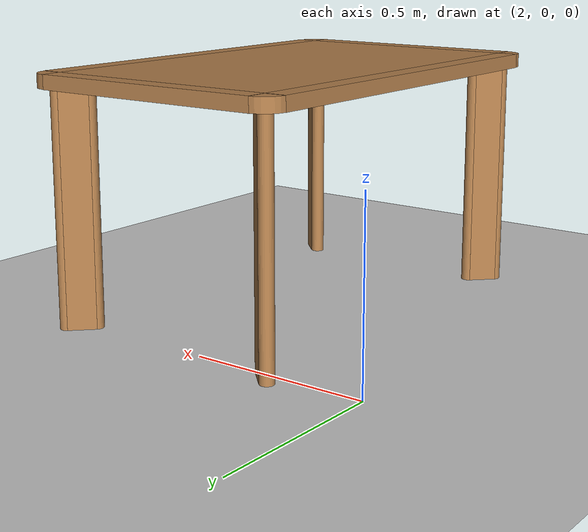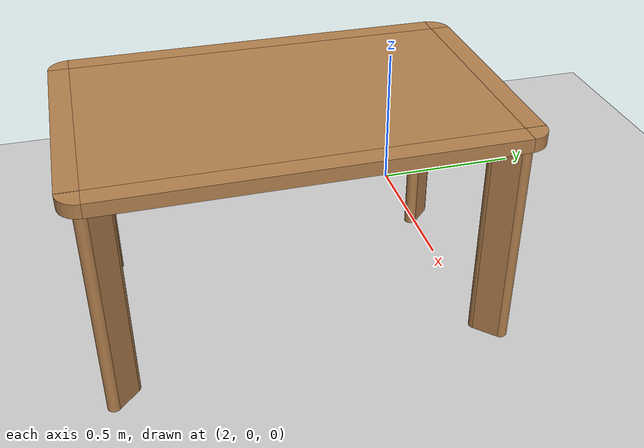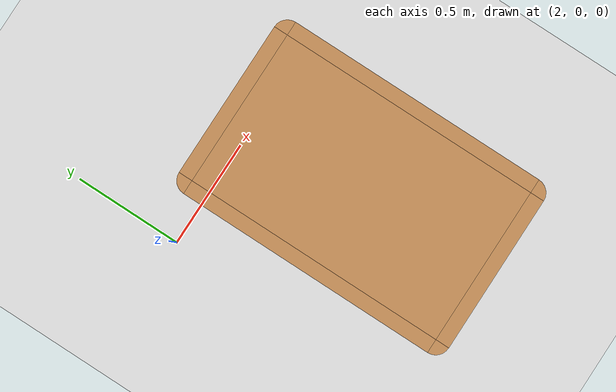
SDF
<sdf version="1.6">
 <world name="default">
  <physics name="default_physics" default="0" type="ode">
   <max_step_size>0.001</max_step_size>
   <real_time_factor>1</real_time_factor>
   <real_time_update_rate>1000</real_time_update_rate>
  </physics>
  <light name="sun" type="directional">
   <pose>0 0 10 0 -0 0</pose>
   <diffuse>0.8 0.8 0.8 1</diffuse>
   <specular>0.2 0.2 0.2 1</specular>
   <attenuation>
    <range>1000</range>
    <constant>0.9</constant>
    <linear>0.01</linear>
    <quadratic>0.001</quadratic>
   </attenuation>
   <direction>-0.5 0.1 -0.9</direction>
  </light>
  <model name="ground_plane">
   <static>1</static>
   <link name="link">
    <collision name="collision">
     <geometry><plane><normal>0 0 1</normal><size>100 100</size></plane></geometry>
     <surface>
      <contact><collide_bitmask>65535</collide_bitmask></contact>
      <friction><ode><mu>100</mu><mu2>50</mu2></ode></friction>
     </surface>
    </collision>
    <visual name="visual">
     <cast_shadows>0</cast_shadows>
     <geometry><plane><normal>0 0 1</normal><size>100 100</size></plane></geometry>
     <material>
      <script><uri>file://media/materials/scripts/gazebo.material</uri><name>Gazebo/Grey</name></script>
     </material>
    </visual>
   </link>
  </model>
  <gravity>0 0 -9.8</gravity>
  <magnetic_field>6e-06 2.3e-05 -4.2e-05</magnetic_field>
  <atmosphere type="adiabatic"/>
  <scene><ambient>0.4 0.4 0.4 1</ambient><background>0.7 0.7 0.7 1</background><shadows>1</shadows></scene>
  <spherical_coordinates>
   <surface_model>EARTH_WGS84</surface_model>
   <latitude_deg>0</latitude_deg>
   <longitude_deg>0</longitude_deg>
   <elevation>0</elevation>
   <heading_deg>0</heading_deg>
  </spherical_coordinates>
  <model name="kitchen_table">
   <link name="link">
    <inertial>
     <mass>10</mass>
     <inertia><ixx>1</ixx><ixy>0</ixy><ixz>0</ixz><iyy>1</iyy><iyz>0</iyz><izz>1</izz></inertia>
    </inertial>
    <visual name="center_board">
     <pose>0 0 0.68 0 -0 0</pose>
     <geometry><box><size>0.68 1.13 0.04</size></box></geometry>
     <material>
      <script><uri>model://base_materials/wood/scripts/wood.material</uri><name>base_materials/wood</name></script>
     </material>
    </visual>
    <collision name="collision_center_board">
     <pose>0 0 0.68 0 -0 0</pose>
     <geometry><box><size>0.68 1.13 0.04</size></box></geometry>
    </collision>
    <visual name="front_board">
     <pose>0.37 0 0.68 0 -0 0</pose>
     <geometry><box><size>0.06 1.13 0.04</size></box></geometry>
     <material>
      <script><uri>model://base_materials/wood/scripts/wood.material</uri><name>base_materials/wood</name></script>
     </material>
    </visual>
    <collision name="collision_front_board">
     <pose>0.37 0 0.68 0 -0 0</pose>
     <geometry><box><size>0.06 1.13 0.04</size></box></geometry>
    </collision>
    <visual name="back_board">
     <pose>-0.37 0 0.68 0 -0 0</pose>
     <geometry><box><size>0.06 1.13 0.04</size></box></geometry>
     <material>
      <script><uri>model://base_materials/wood/scripts/wood.material</uri><name>base_materials/wood</name></script>
     </material>
    </visual>
    <collision name="collision_back_board">
     <pose>-0.37 0 0.68 0 -0 0</pose>
     <geometry><box><size>0.06 1.13 0.04</size></box></geometry>
    </collision>
    <visual name="right_board">
     <pose>0 0.595 0.68 0 -0 0</pose>
     <geometry><box><size>0.68 0.06 0.04</size></box></geometry>
     <material>
      <script><uri>model://base_materials/wood/scripts/wood.material</uri><name>base_materials/wood</name></script>
     </material>
    </visual>
    <collision name="collision_right_board">
     <pose>0 0.595 0.68 0 -0 0</pose>
     <geometry><box><size>0.68 0.06 0.04</size></box></geometry>
    </collision>
    <visual name="left_board">
     <pose>0 -0.595 0.68 0 -0 0</pose>
     <geometry><box><size>0.68 0.06 0.04</size></box></geometry>
     <material>
      <script><uri>model://base_materials/wood/scripts/wood.material</uri><name>base_materials/wood</name></script>
     </material>
    </visual>
    <collision name="collision_left_board">
     <pose>0 -0.595 0.68 0 -0 0</pose>
     <geometry><box><size>0.68 0.06 0.04</size></box></geometry>
    </collision>
    <visual name="front_right_corner_board">
     <pose>0.34 0.565 0.68 0 -0 0</pose>
     <geometry><cylinder><radius>0.06</radius><length>0.039</length></cylinder></geometry>
     <material>
      <script><uri>model://base_materials/wood/scripts/wood.material</uri><name>base_materials/wood</name></script>
     </material>
    </visual>
    <collision name="collision_front_right_corner_board">
     <pose>0.34 0.565 0.68 0 -0 0</pose>
     <geometry><cylinder><radius>0.06</radius><length>0.039</length></cylinder></geometry>
    </collision>
    <visual name="front_left_corner_board">
     <pose>0.34 -0.565 0.68 0 -0 0</pose>
     <geometry><cylinder><radius>0.06</radius><length>0.039</length></cylinder></geometry>
     <material>
      <script><uri>model://base_materials/wood/scripts/wood.material</uri><name>base_materials/wood</name></script>
     </material>
    </visual>
    <collision name="collision_front_left_corner_board">
     <pose>0.34 -0.565 0.68 0 -0 0</pose>
     <geometry><cylinder><radius>0.06</radius><length>0.039</length></cylinder></geometry>
    </collision>
    <visual name="front_back_right_corner_board">
     <pose>-0.34 0.565 0.68 0 -0 0</pose>
     <geometry><cylinder><radius>0.06</radius><length>0.039</length></cylinder></geometry>
     <material>
      <script><uri>model://base_materials/wood/scripts/wood.material</uri><name>base_materials/wood</name></script>
     </material>
    </visual>
    <collision name="collision_back_right_corner_board">
     <pose>-0.34 0.565 0.68 0 -0 0</pose>
     <geometry><cylinder><radius>0.06</radius><length>0.039</length></cylinder></geometry>
    </collision>
    <visual name="front_back_left_corner_board">
     <pose>-0.34 -0.565 0.68 0 -0 0</pose>
     <geometry><cylinder><radius>0.06</radius><length>0.039</length></cylinder></geometry>
     <material>
      <script><uri>model://base_materials/wood/scripts/wood.material</uri><name>base_materials/wood</name></script>
     </material>
    </visual>
    <collision name="collision_back_left_corner_board">
     <pose>-0.34 -0.565 0.68 0 -0 0</pose>
     <geometry><cylinder><radius>0.06</radius><length>0.039</length></cylinder></geometry>
    </collision>
    <visual name="front_left_corner_frame1">
     <pose>0.345858 -0.57086 0.33 0 -0 0</pose>
     <geometry><cylinder><radius>0.02</radius><length>0.66</length></cylinder></geometry>
     <material>
      <script><uri>model://base_materials/wood/scripts/wood.material</uri><name>base_materials/wood</name></script>
     </material>
    </visual>
    <collision name="collision_front_left_corner_frame1">
     <pose>0.345858 -0.57086 0.33 0 -0 0</pose>
     <geometry><cylinder><radius>0.02</radius><length>0.66</length></cylinder></geometry>
    </collision>
    <visual name="front_left_corner_frame2">
     <pose>0.317574 -0.54257 0.33 0 -0 0.7854</pose>
     <geometry><box><size>0.04 0.08 0.66</size></box></geometry>
     <material>
      <script><uri>model://base_materials/wood/scripts/wood.material</uri><name>base_materials/wood</name></script>
     </material>
    </visual>
    <collision name="collision_front_left_corner_frame2">
     <pose>0.317574 -0.54257 0.33 0 -0 0.7854</pose>
     <geometry><box><size>0.04 0.08 0.66</size></box></geometry>
    </collision>
    <visual name="front_left_corner_frame3">
     <pose>0.289289 -0.51429 0.33 0 -0 0</pose>
     <geometry><cylinder><radius>0.02</radius><length>0.66</length></cylinder></geometry>
     <material>
      <script><uri>model://base_materials/wood/scripts/wood.material</uri><name>base_materials/wood</name></script>
     </material>
    </visual>
    <collision name="collision_front_left_corner_frame3">
     <pose>0.289289 -0.51429 0.33 0 -0 0</pose>
     <geometry><cylinder><radius>0.02</radius><length>0.66</length></cylinder></geometry>
    </collision>
    <visual name="front_right_corner_frame1">
     <pose>0.345858 0.57086 0.33 0 -0 0</pose>
     <geometry><cylinder><radius>0.02</radius><length>0.66</length></cylinder></geometry>
     <material>
      <script><uri>model://base_materials/wood/scripts/wood.material</uri><name>base_materials/wood</name></script>
     </material>
    </visual>
    <collision name="collision_front_right_corner_frame1">
     <pose>0.345858 0.57086 0.33 0 -0 0</pose>
     <geometry><cylinder><radius>0.02</radius><length>0.66</length></cylinder></geometry>
    </collision>
    <visual name="front_right_corner_frame2">
     <pose>0.317574 0.54257 0.33 0 0 -0.7854</pose>
     <geometry><box><size>0.04 0.08 0.66</size></box></geometry>
     <material>
      <script><uri>model://base_materials/wood/scripts/wood.material</uri><name>base_materials/wood</name></script>
     </material>
    </visual>
    <collision name="collision_front_right_corner_frame2">
     <pose>0.317574 0.54257 0.33 0 0 -0.7854</pose>
     <geometry><box><size>0.04 0.08 0.66</size></box></geometry>
    </collision>
    <visual name="front_right_corner_frame3">
     <pose>0.289289 0.51429 0.33 0 -0 0</pose>
     <geometry><cylinder><radius>0.02</radius><length>0.66</length></cylinder></geometry>
     <material>
      <script><uri>model://base_materials/wood/scripts/wood.material</uri><name>base_materials/wood</name></script>
     </material>
    </visual>
    <collision name="collision_front_right_corner_frame3">
     <pose>0.289289 0.51429 0.33 0 -0 0</pose>
     <geometry><cylinder><radius>0.02</radius><length>0.66</length></cylinder></geometry>
    </collision>
    <visual name="back_left_corner_frame1">
     <pose>-0.345858 -0.57086 0.33 0 -0 0</pose>
     <geometry><cylinder><radius>0.02</radius><length>0.66</length></cylinder></geometry>
     <material>
      <script><uri>model://base_materials/wood/scripts/wood.material</uri><name>base_materials/wood</name></script>
     </material>
    </visual>
    <collision name="collision_back_left_corner_frame1">
     <pose>-0.345858 -0.57086 0.33 0 -0 0</pose>
     <geometry><cylinder><radius>0.02</radius><length>0.66</length></cylinder></geometry>
    </collision>
    <visual name="back_left_corner_frame2">
     <pose>-0.317574 -0.54257 0.33 0 0 -0.7854</pose>
     <geometry><box><size>0.04 0.08 0.66</size></box></geometry>
     <material>
      <script><uri>model://base_materials/wood/scripts/wood.material</uri><name>base_materials/wood</name></script>
     </material>
    </visual>
    <collision name="collision_back_left_corner_frame2">
     <pose>-0.317574 -0.54257 0.33 0 0 -0.7854</pose>
     <geometry><box><size>0.04 0.08 0.66</size></box></geometry>
    </collision>
    <visual name="back_left_corner_frame3">
     <pose>-0.289289 -0.51429 0.33 0 -0 0</pose>
     <geometry><cylinder><radius>0.02</radius><length>0.66</length></cylinder></geometry>
     <material>
      <script><uri>model://base_materials/wood/scripts/wood.material</uri><name>base_materials/wood</name></script>
     </material>
    </visual>
    <collision name="collision_back_left_corner_frame3">
     <pose>-0.289289 -0.51429 0.33 0 -0 0</pose>
     <geometry><cylinder><radius>0.02</radius><length>0.66</length></cylinder></geometry>
    </collision>
    <visual name="back_right_corner_frame1">
     <pose>-0.345858 0.57086 0.33 0 -0 0</pose>
     <geometry><cylinder><radius>0.02</radius><length>0.66</length></cylinder></geometry>
     <material>
      <script><uri>model://base_materials/wood/scripts/wood.material</uri><name>base_materials/wood</name></script>
     </material>
    </visual>
    <collision name="collision_back_right_corner_frame1">
     <pose>-0.345858 0.57086 0.33 0 -0 0</pose>
     <geometry><cylinder><radius>0.02</radius><length>0.66</length></cylinder></geometry>
    </collision>
    <visual name="back_right_corner_frame2">
     <pose>-0.317574 0.54257 0.33 0 -0 0.7854</pose>
     <geometry><box><size>0.04 0.08 0.66</size></box></geometry>
     <material>
      <script><uri>model://base_materials/wood/scripts/wood.material</uri><name>base_materials/wood</name></script>
     </material>
    </visual>
    <collision name="collision_back_right_corner_frame2">
     <pose>-0.317574 0.54257 0.33 0 -0 0.7854</pose>
     <geometry><box><size>0.04 0.08 0.66</size></box></geometry>
    </collision>
    <visual name="back_right_corner_frame3">
     <pose>-0.289289 0.51429 0.33 0 -0 0</pose>
     <geometry><cylinder><radius>0.02</radius><length>0.66</length></cylinder></geometry>
     <material>
      <script><uri>model://base_materials/wood/scripts/wood.material</uri><name>base_materials/wood</name></script>
     </material>
    </visual>
    <collision name="collision_back_right_corner_frame3">
     <pose>-0.289289 0.51429 0.33 0 -0 0</pose>
     <geometry><cylinder><radius>0.02</radius><length>0.66</length></cylinder></geometry>
    </collision>
    <velocity_decay><linear>0</linear><angular>0</angular></velocity_decay>
   </link>
   <static>1</static>
   <pose>2.5924 -0.525114 0 0 -0 0</pose>
  </model>
 </world>
</sdf>
